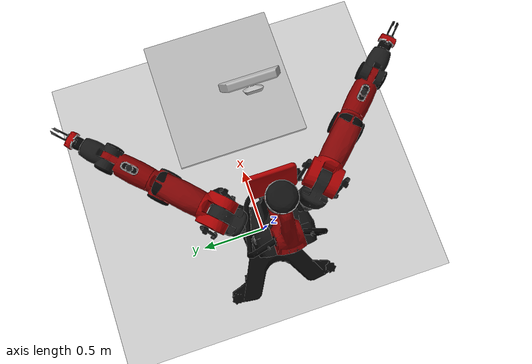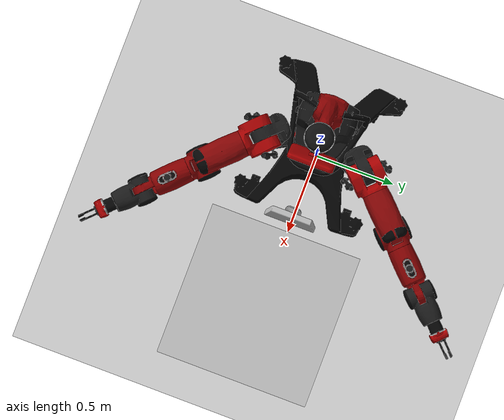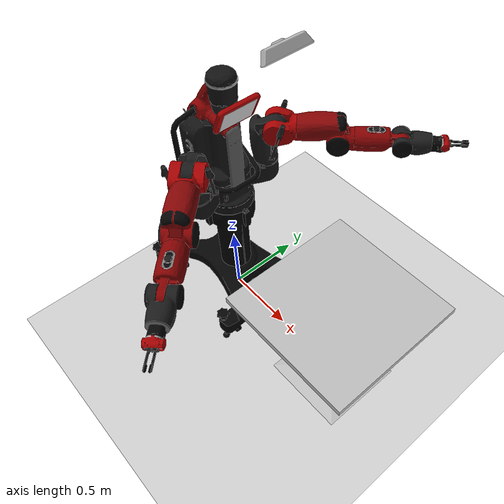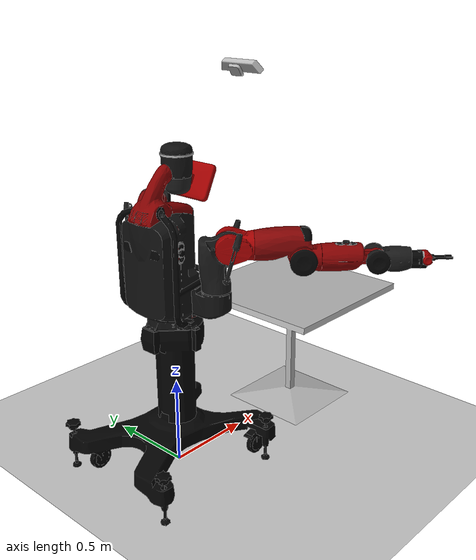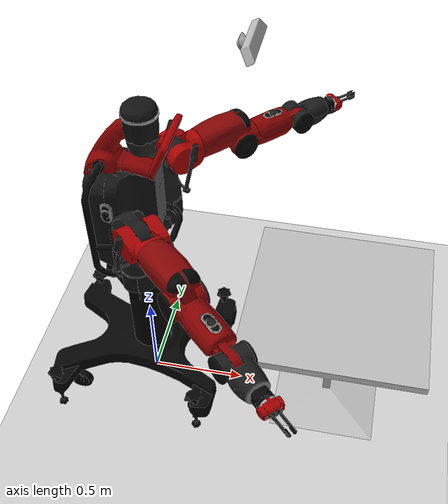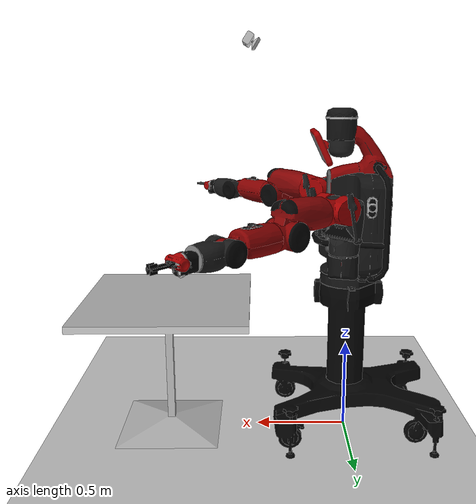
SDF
<sdf version="1.4">
 <world name="myworld">
  <light name="sun" type="directional">
   <pose>0 0 10 0 -0 0</pose>
   <diffuse>0.8 0.8 0.8 1</diffuse>
   <specular>0.2 0.2 0.2 1</specular>
   <attenuation>
    <range>1000</range>
    <constant>0.9</constant>
    <linear>0.01</linear>
    <quadratic>0.001</quadratic>
   </attenuation>
   <direction>-0.5 0.1 -0.9</direction>
  </light>
  <model name="ground_plane">
   <static>1</static>
   <link name="link">
    <collision name="collision">
     <geometry><plane><normal>0 0 1</normal><size>100 100</size></plane></geometry>
     <surface><friction><ode><mu>100</mu><mu2>50</mu2></ode></friction></surface>
    </collision>
    <visual name="visual">
     <cast_shadows>0</cast_shadows>
     <geometry><plane><normal>0 0 1</normal><size>100 100</size></plane></geometry>
     <material>
      <script><uri>file://media/materials/scripts/gazebo.material</uri><name>Gazebo/Grey</name></script>
     </material>
    </visual>
    <velocity_decay><linear>0</linear><angular>0</angular></velocity_decay>
   </link>
  </model>
  <physics type="ode">
   <max_step_size>0.001</max_step_size>
   <real_time_factor>1</real_time_factor>
   <real_time_update_rate>1000</real_time_update_rate>
   <gravity>0 0 -9.8</gravity>
  </physics>
  <scene><ambient>0.4 0.4 0.4 1</ambient><background>0.7 0.7 0.7 1</background><shadows>1</shadows></scene>
  <spherical_coordinates>
   <surface_model>EARTH_WGS84</surface_model>
   <latitude_deg>0</latitude_deg>
   <longitude_deg>0</longitude_deg>
   <elevation>0</elevation>
   <heading_deg>0</heading_deg>
  </spherical_coordinates>
  <model name="baxter">
   <link name="base">
    <inertial>
     <pose>1.93397e-07 -1.05658e-22 3.46402e-06 0 -0 0</pose>
     <mass>96.2011</mass>
     <inertia>
      <ixx>6.91297</ixx>
      <ixy>0.00068017</ixy>
      <ixz>0.64779</ixz>
      <iyy>7.74978</iyy>
      <iyz>0.00434511</iyz>
      <izz>5.76418</izz>
     </inertia>
    </inertial>
    <collision name="base_collision_collision_head_link_1">
     <pose>0.04 -0.04 0.75 0 -0 0</pose>
     <geometry><sphere><radius>0.22</radius></sphere></geometry>
    </collision>
    <collision name="base_collision_collision_head_link_2">
     <pose>0.04 0.04 0.75 0 -0 0</pose>
     <geometry><sphere><radius>0.22</radius></sphere></geometry>
    </collision>
    <collision name="base_collision_pedestal">
     <geometry>
      <mesh>
       <scale>1 1 1</scale>
       <uri>/home/kw2503/baxter-abcs/src/baxter_description/meshes/base/pedestal_link_collision.DAE</uri>
      </mesh>
     </geometry>
    </collision>
    <collision name="base_collision_sonar_ring">
     <pose>0.0947 0 0.817 0 -0 0</pose>
     <geometry><sphere><radius>0.001</radius></sphere></geometry>
    </collision>
    <collision name="base_collision_torso">
     <geometry>
      <mesh>
       <scale>1 1 1</scale>
       <uri>/home/kw2503/baxter-abcs/src/baxter_description/meshes/torso/base_link_collision.DAE</uri>
      </mesh>
     </geometry>
    </collision>
    <visual name="base_visual_collision_head_link_1">
     <pose>0.11 0 0.75 0 -0 0</pose>
     <geometry><sphere><radius>0.001</radius></sphere></geometry>
    </visual>
    <visual name="base_visual_collision_head_link_2">
     <pose>0.11 0 0.75 0 -0 0</pose>
     <geometry><sphere><radius>0.001</radius></sphere></geometry>
    </visual>
    <visual name="base_visual_pedestal">
     <geometry>
      <mesh>
       <scale>1 1 1</scale>
       <uri>/home/kw2503/baxter-abcs/src/baxter_description/meshes/base/PEDESTAL.DAE</uri>
      </mesh>
     </geometry>
    </visual>
    <visual name="base_visual_sonar_ring">
     <pose>0.06 0 0.82653 0 -0 0</pose>
     <geometry><cylinder><length>0.01</length><radius>0.085</radius></cylinder></geometry>
    </visual>
    <visual name="base_visual_torso">
     <geometry>
      <mesh>
       <scale>1 1 1</scale>
       <uri>/home/kw2503/baxter-abcs/src/baxter_description/meshes/torso/base_link.DAE</uri>
      </mesh>
     </geometry>
    </visual>
    <velocity_decay><linear>0</linear><angular>0</angular></velocity_decay>
    <velocity_decay><linear>0</linear><angular>0</angular></velocity_decay>
    <sensor name="sonar" type="ray">
     <ray>
      <scan>
       <horizontal>
        <samples>12</samples>
        <resolution>1</resolution>
        <min_angle>-3.14</min_angle>
        <max_angle>3.14</max_angle>
       </horizontal>
       <vertical>
        <samples>2</samples>
        <resolution>1</resolution>
        <min_angle>-0.001</min_angle>
        <max_angle>0</max_angle>
       </vertical>
      </scan>
      <range><min>0.05</min><max>50</max></range>
     </ray>
     <plugin name="sonar_plugin" filename="libgazebo_ros_block_laser.so">
      <gaussianNoise>0.00</gaussianNoise>
      <alwaysOn>true</alwaysOn>
      <updateRate>100.0</updateRate>
      <topicName>/robot/sonar/head_sonar/state</topicName>
      <frameName>sonar_ring</frameName>
      <robotNamespace>/</robotNamespace>
     </plugin>
     <always_on>1</always_on>
     <update_rate>100</update_rate>
     <pose>0.0947 0 0.817 0 -0 0</pose>
    </sensor>
   </link>
   <joint name="fixed" type="revolute">
    <child>base</child>
    <parent>world</parent>
    <axis>
     <limit><lower>0</lower><upper>0</upper></limit>
     <dynamics><damping>0</damping></dynamics>
     <xyz>0 0 1</xyz>
    </axis>
   </joint>
   <link name="head">
    <pose>0.06 0 0.686 0 -0 0</pose>
    <inertial>
     <pose>0.0955984 1.28734e-18 0.0459502 0 -0 0</pose>
     <mass>1.08824</mass>
     <inertia>
      <ixx>0.0389042</ixx>
      <ixy>0.000202093</ixy>
      <ixz>-0.019724</ixz>
      <iyy>0.0616883</iyy>
      <iyz>-0.00109806</iyz>
      <izz>0.0378481</izz>
     </inertia>
    </inertial>
    <collision name="head_collision"><geometry><sphere><radius>0.001</radius></sphere></geometry></collision>
    <collision name="head_collision_kinect_mount_frame">
     <pose>0.5 0.012 0.5 0 1.0177 0</pose>
     <geometry>
      <mesh>
       <scale>0.001 0.001 0.001</scale>
       <uri>/opt/ros/indigo/share/pr2_description/meshes/sensors/kinect_v0/kinect.dae</uri>
      </mesh>
     </geometry>
    </collision>
    <collision name="head_collision_screen">
     <pose>0.1227 0 0 1.75057 5.55112e-17 1.5708</pose>
     <geometry><sphere><radius>0.001</radius></sphere></geometry>
    </collision>
    <visual name="head_visual">
     <pose>0 0 0.00953 0 -0 0</pose>
     <geometry>
      <mesh><scale>1 1 1</scale><uri>/home/kw2503/baxter-abcs/src/baxter_description/meshes/head/H0.DAE</uri></mesh>
     </geometry>
    </visual>
    <visual name="head_visual_display">
     <pose>0.119839 1.40131e-14 -0.0157421 2.01237 5.55112e-17 1.5708</pose>
     <geometry><box><size>0.218 0.16 0.001</size></box></geometry>
     <plugin name="screen_video_controller" filename="libgazebo_ros_video.so">
      <height>600</height>
      <width>1024</width>
      <topicName>/robot/xdisplay</topicName>
      <robotNamespace>/</robotNamespace>
     </plugin>
    </visual>
    <visual name="head_visual_kinect_mount_frame">
     <pose>0.5 0.012 0.5 0 1.0177 0</pose>
     <geometry>
      <mesh>
       <scale>0.001 0.001 0.001</scale>
       <uri>/opt/ros/indigo/share/pr2_description/meshes/sensors/kinect_v0/kinect.dae</uri>
      </mesh>
     </geometry>
    </visual>
    <visual name="head_visual_screen">
     <pose>0.0868552 1.75522e-13 -0.00317182 1.5708 0.179774 8.02016e-14</pose>
     <geometry>
      <mesh><scale>1 1 1</scale><uri>/home/kw2503/baxter-abcs/src/baxter_description/meshes/head/H1.DAE</uri></mesh>
     </geometry>
    </visual>
    <velocity_decay><linear>0</linear><angular>0</angular></velocity_decay>
    <sensor name="head_camera" type="camera">
     <update_rate>30</update_rate>
     <camera name="head_camera">
      <pose>0 0.21 0 -7.96765e-17 -0.8 -1.5708</pose>
      <horizontal_fov>1.39626</horizontal_fov>
      <image><width>800</width><height>800</height><format>R8G8B8</format></image>
      <clip><near>0.02</near><far>300</far></clip>
      <noise><type>gaussian</type><mean>0</mean><stddev>0.007</stddev></noise>
     </camera>
     <plugin name="camera_controller" filename="libgazebo_ros_camera.so">
      <alwaysOn>true</alwaysOn>
      <updateRate>0.0</updateRate>
      <cameraName>head_camera</cameraName>
      <imageTopicName>image</imageTopicName>
      <cameraInfoTopicName>camera_info</cameraInfoTopicName>
      <frameName>head_camera</frameName>
      <hackBaseline>0.07</hackBaseline>
      <distortionK1>0.0</distortionK1>
      <distortionK2>0.0</distortionK2>
      <distortionK3>0.0</distortionK3>
      <distortionT1>0.0</distortionT1>
      <distortionT2>0.0</distortionT2>
      <robotNamespace>/cameras</robotNamespace>
     </plugin>
     <pose>0.12839 0 0.06368 1.75057 5.55112e-17 1.5708</pose>
    </sensor>
    <velocity_decay><linear>0</linear><angular>0</angular></velocity_decay>
    <velocity_decay><linear>0</linear><angular>0</angular></velocity_decay>
    <sensor name="kinect_mount_frame_sensor" type="depth">
     <always_on>1</always_on>
     <update_rate>20</update_rate>
     <camera name="__default__">
      <horizontal_fov>0.994838</horizontal_fov>
      <image><format>R8G8B8</format><width>640</width><height>480</height></image>
      <clip><near>0.01</near><far>5</far></clip>
     </camera>
     <plugin name="kinect_mount_frame_controller" filename="libgazebo_ros_openni_kinect.so">
      <alwaysOn>true</alwaysOn>
      <updateRate>20.0</updateRate>
      <cameraName>kinect_mount</cameraName>
      <imageTopicName>kinect_mount/ir/image_raw</imageTopicName>
      <cameraInfoTopicName>kinect_mount/ir/camera_info</cameraInfoTopicName>
      <depthImageTopicName>kinect_mount/depth/image_raw</depthImageTopicName>
      <depthImageCameraInfoTopicName>kinect_mount/depth/camera_info</depthImageCameraInfoTopicName>
      <pointCloudTopicName>kinect_mount/depth/points</pointCloudTopicName>
      <frameName>kinect_mount_optical_frame</frameName>
      <pointCloudCutoff>0.5</pointCloudCutoff>
      <distortionK1>0.00000001</distortionK1>
      <distortionK2>0.00000001</distortionK2>
      <distortionK3>0.00000001</distortionK3>
      <distortionT1>0.00000001</distortionT1>
      <distortionT2>0.00000001</distortionT2>
      <CxPrime>0</CxPrime>
      <Cx>0</Cx>
      <Cy>0</Cy>
      <focalLength>0</focalLength>
      <hackBaseline>0</hackBaseline>
      <robotNamespace>/</robotNamespace>
     </plugin>
     <pose>0.5 0 0.5 0 1.0177 0</pose>
    </sensor>
    <sensor name="kinect_mount_frame_sensor" type="depth">
     <always_on>1</always_on>
     <update_rate>20</update_rate>
     <camera name="__default__">
      <horizontal_fov>0.994838</horizontal_fov>
      <image><format>R8G8B8</format><width>640</width><height>480</height></image>
      <clip><near>0.01</near><far>5</far></clip>
     </camera>
     <plugin name="kinect_mount_frame_controller" filename="libgazebo_ros_openni_kinect.so">
      <alwaysOn>true</alwaysOn>
      <updateRate>20.0</updateRate>
      <cameraName>kinect_mount</cameraName>
      <imageTopicName>kinect_mount/rgb/image_raw</imageTopicName>
      <cameraInfoTopicName>kinect_mount/rgb/camera_info</cameraInfoTopicName>
      <depthImageTopicName>kinect_mount/depth/image_raw</depthImageTopicName>
      <depthImageCameraInfoTopicName>kinect_mount/depth/camera_info</depthImageCameraInfoTopicName>
      <pointCloudTopicName>kinect_mount/rgb/points</pointCloudTopicName>
      <frameName>kinect_mount_optical_frame</frameName>
      <pointCloudCutoff>0.5</pointCloudCutoff>
      <distortionK1>0.00000001</distortionK1>
      <distortionK2>0.00000001</distortionK2>
      <distortionK3>0.00000001</distortionK3>
      <distortionT1>0.00000001</distortionT1>
      <distortionT2>0.00000001</distortionT2>
      <CxPrime>0</CxPrime>
      <Cx>0</Cx>
      <Cy>0</Cy>
      <focalLength>0</focalLength>
      <hackBaseline>0</hackBaseline>
      <robotNamespace>/</robotNamespace>
     </plugin>
     <pose>0.5 0 0.5 0 1.0177 0</pose>
    </sensor>
   </link>
   <joint name="head_pan" type="revolute">
    <child>head</child>
    <parent>base</parent>
    <axis>
     <xyz>0 0 1</xyz>
     <limit><lower>-1.3963</lower><upper>1.3963</upper><effort>50000</effort><velocity>10000</velocity></limit>
     <dynamics><damping>0.7</damping></dynamics>
    </axis>
    <physics>
     <ode>
      <implicit_spring_damper>1</implicit_spring_damper>
      <cfm_damping>1</cfm_damping>
      <limit><cfm>0</cfm><erp>0.2</erp></limit>
     </ode>
    </physics>
   </joint>
   <link name="left_upper_shoulder">
    <pose>0.0640272 0.259027 0.129626 0 -0 0.7854</pose>
    <inertial>
     <pose>0.01783 0.00086 0.19127 0 -0 0</pose>
     <mass>5.70044</mass>
     <inertia>
      <ixx>0.047091</ixx>
      <ixy>0.000127876</ixy>
      <ixz>0.0061487</ixz>
      <iyy>0.0376698</iyy>
      <iyz>0.000780869</iyz>
      <izz>0.0359599</izz>
     </inertia>
    </inertial>
    <collision name="left_upper_shoulder_collision">
     <pose>0 0 0.1361 0 -0 0</pose>
     <geometry><cylinder><length>0.2722</length><radius>0.06</radius></cylinder></geometry>
    </collision>
    <visual name="left_upper_shoulder_visual">
     <geometry>
      <mesh>
       <scale>1 1 1</scale>
       <uri>/home/kw2503/baxter-abcs/src/baxter_description/meshes/upper_shoulder/S0.DAE</uri>
      </mesh>
     </geometry>
    </visual>
    <velocity_decay><linear>0</linear><angular>0</angular></velocity_decay>
    <gravity>0</gravity>
   </link>
   <joint name="left_s0" type="revolute">
    <child>left_upper_shoulder</child>
    <parent>base</parent>
    <axis>
     <xyz>0 0 1</xyz>
     <limit><lower>-1.70168</lower><upper>1.70168</upper><effort>50</effort><velocity>1.5</velocity></limit>
     <dynamics><damping>0.7</damping></dynamics>
    </axis>
    <physics>
     <ode>
      <implicit_spring_damper>1</implicit_spring_damper>
      <cfm_damping>1</cfm_damping>
      <limit><cfm>0</cfm><erp>0.2</erp></limit>
     </ode>
    </physics>
   </joint>
   <link name="left_lower_shoulder">
    <pose>0.112818 0.307818 0.399976 -1.5708 -0 0.7854</pose>
    <inertial>
     <pose>0.0684512 0.00268992 -0.00528984 0 -0 0</pose>
     <mass>3.22708</mass>
     <inertia>
      <ixx>0.0117521</ixx>
      <ixy>-0.000300954</ixy>
      <ixz>0.00207674</ixz>
      <iyy>0.0278861</iyy>
      <iyz>-0.000188219</iyz>
      <izz>0.0207877</izz>
     </inertia>
    </inertial>
    <collision name="left_lower_shoulder_collision">
     <geometry><cylinder><length>0.12</length><radius>0.06</radius></cylinder></geometry>
    </collision>
    <collision name="left_lower_shoulder_collision_left_upper_elbow_visual">
     <pose>0.2435 -6.68382e-13 6.68382e-13 1.5708 -5.55112e-17 1.5708</pose>
     <geometry><cylinder><length>0.273</length><radius>0.06</radius></cylinder></geometry>
    </collision>
    <visual name="left_lower_shoulder_visual">
     <geometry>
      <mesh>
       <scale>1 1 1</scale>
       <uri>/home/kw2503/baxter-abcs/src/baxter_description/meshes/lower_shoulder/S1.DAE</uri>
      </mesh>
     </geometry>
    </visual>
    <velocity_decay><linear>0</linear><angular>0</angular></velocity_decay>
    <gravity>0</gravity>
   </link>
   <joint name="left_s1" type="revolute">
    <child>left_lower_shoulder</child>
    <parent>left_upper_shoulder</parent>
    <axis>
     <xyz>-0.707108 0.707105 0</xyz>
     <limit><lower>-2.147</lower><upper>1.047</upper><effort>50</effort><velocity>1.5</velocity></limit>
     <dynamics><damping>0.7</damping></dynamics>
    </axis>
    <physics>
     <ode>
      <implicit_spring_damper>1</implicit_spring_damper>
      <cfm_damping>1</cfm_damping>
      <limit><cfm>0</cfm><erp>0.2</erp></limit>
     </ode>
    </physics>
   </joint>
   <link name="left_upper_elbow">
    <pose>0.184942 0.379943 0.399976 -2.35616 1.57079 -1.57076</pose>
    <inertial>
     <pose>-0.00276 0.00132 0.18086 0 -0 0</pose>
     <mass>4.31272</mass>
     <inertia>
      <ixx>0.0266173</ixx>
      <ixy>0.000292706</ixy>
      <ixz>0.0039219</ixz>
      <iyy>0.0284436</iyy>
      <iyz>0.00108389</iyz>
      <izz>0.0124801</izz>
     </inertia>
    </inertial>
    <collision name="left_upper_elbow_collision">
     <pose>0 0 -0.0535 0 -0 0</pose>
     <geometry><cylinder><length>0.107</length><radius>0.06</radius></cylinder></geometry>
    </collision>
    <visual name="left_upper_elbow_visual">
     <geometry>
      <mesh>
       <scale>1 1 1</scale>
       <uri>/home/kw2503/baxter-abcs/src/baxter_description/meshes/upper_elbow/E0.DAE</uri>
      </mesh>
     </geometry>
    </visual>
    <velocity_decay><linear>0</linear><angular>0</angular></velocity_decay>
    <gravity>0</gravity>
   </link>
   <joint name="left_e0" type="revolute">
    <child>left_upper_elbow</child>
    <parent>left_lower_shoulder</parent>
    <axis>
     <xyz>0.707105 0.707108 0</xyz>
     <limit><lower>-3.05418</lower><upper>3.05418</upper><effort>50</effort><velocity>1.5</velocity></limit>
     <dynamics><damping>0.7</damping></dynamics>
    </axis>
    <physics>
     <ode>
      <implicit_spring_damper>1</implicit_spring_damper>
      <cfm_damping>1</cfm_damping>
      <limit><cfm>0</cfm><erp>0.2</erp></limit>
     </ode>
    </physics>
   </joint>
   <link name="left_lower_elbow">
    <pose>0.370501 0.565502 0.330976 -1.5708 -0 0.7854</pose>
    <inertial>
     <pose>0.026113 0.00158992 -0.0111695 0 -0 0</pose>
     <mass>2.07216</mass>
     <inertia>
      <ixx>0.00711585</ixx>
      <ixy>0.000360372</ixy>
      <ixz>0.00074588</ixz>
      <iyy>0.0131827</iyy>
      <iyz>-0.000196632</iyz>
      <izz>0.00926891</izz>
     </inertia>
    </inertial>
    <collision name="left_lower_elbow_collision">
     <geometry><cylinder><length>0.1</length><radius>0.06</radius></cylinder></geometry>
    </collision>
    <collision name="left_lower_elbow_collision_left_upper_forearm_visual">
     <pose>0.224 -6.6594e-13 6.6594e-13 1.5708 -5.55112e-17 1.5708</pose>
     <geometry><cylinder><length>0.272</length><radius>0.06</radius></cylinder></geometry>
    </collision>
    <visual name="left_lower_elbow_visual">
     <geometry>
      <mesh>
       <scale>1 1 1</scale>
       <uri>/home/kw2503/baxter-abcs/src/baxter_description/meshes/lower_elbow/E1.DAE</uri>
      </mesh>
     </geometry>
    </visual>
    <velocity_decay><linear>0</linear><angular>0</angular></velocity_decay>
    <gravity>0</gravity>
   </link>
   <joint name="left_e1" type="revolute">
    <child>left_lower_elbow</child>
    <parent>left_upper_elbow</parent>
    <axis>
     <xyz>-0.707108 0.707105 0</xyz>
     <limit><lower>-0.05</lower><upper>2.618</upper><effort>50</effort><velocity>1.5</velocity></limit>
     <dynamics><damping>0.7</damping></dynamics>
    </axis>
    <physics>
     <ode>
      <implicit_spring_damper>1</implicit_spring_damper>
      <cfm_damping>1</cfm_damping>
      <limit><cfm>0</cfm><erp>0.2</erp></limit>
     </ode>
    </physics>
   </joint>
   <link name="left_upper_forearm">
    <pose>0.44375 0.638751 0.330976 -2.03443 1.57079 -1.24903</pose>
    <inertial>
     <pose>-0.00168244 0.0045998 0.139519 0 -0 0</pose>
     <mass>2.24675</mass>
     <inertia>
      <ixx>0.0166775</ixx>
      <ixy>0.000184012</ixy>
      <ixz>0.000186469</ixz>
      <iyy>0.0167549</iyy>
      <iyz>-0.000647332</iyz>
      <izz>0.00374662</izz>
     </inertia>
    </inertial>
    <collision name="left_upper_forearm_collision">
     <pose>0 0 -0.044 0 -0 0</pose>
     <geometry><cylinder><length>0.088</length><radius>0.06</radius></cylinder></geometry>
    </collision>
    <visual name="left_upper_forearm_visual">
     <geometry>
      <mesh>
       <scale>1 1 1</scale>
       <uri>/home/kw2503/baxter-abcs/src/baxter_description/meshes/upper_forearm/W0.DAE</uri>
      </mesh>
     </geometry>
    </visual>
    <velocity_decay><linear>0</linear><angular>0</angular></velocity_decay>
    <gravity>0</gravity>
   </link>
   <joint name="left_w0" type="revolute">
    <child>left_upper_forearm</child>
    <parent>left_lower_elbow</parent>
    <axis>
     <xyz>0.707105 0.707108 0</xyz>
     <limit><lower>-3.059</lower><upper>3.059</upper><effort>15</effort><velocity>4</velocity></limit>
     <dynamics><damping>0.7</damping></dynamics>
    </axis>
    <physics>
     <ode>
      <implicit_spring_damper>1</implicit_spring_damper>
      <cfm_damping>1</cfm_damping>
      <limit><cfm>0</cfm><erp>0.2</erp></limit>
     </ode>
    </physics>
   </joint>
   <link name="left_lower_forearm">
    <pose>0.635163 0.830166 0.320976 -1.5708 -1.66533e-16 0.7854</pose>
    <inertial>
     <pose>0.06041 0.00697 0.006 0 -0 0</pose>
     <mass>1.60979</mass>
     <inertia>
      <ixx>0.00387607</ixx>
      <ixy>-0.000443848</ixy>
      <ixz>-0.00021115</ixz>
      <iyy>0.00700538</iyy>
      <iyz>0.000153481</iyz>
      <izz>0.00552755</izz>
     </inertia>
    </inertial>
    <collision name="left_lower_forearm_collision">
     <geometry><cylinder><length>0.1</length><radius>0.06</radius></cylinder></geometry>
    </collision>
    <visual name="left_lower_forearm_visual">
     <geometry>
      <mesh>
       <scale>1 1 1</scale>
       <uri>/home/kw2503/baxter-abcs/src/baxter_description/meshes/lower_forearm/W1.DAE</uri>
      </mesh>
     </geometry>
    </visual>
    <velocity_decay><linear>0</linear><angular>0</angular></velocity_decay>
    <gravity>0</gravity>
   </link>
   <joint name="left_w1" type="revolute">
    <child>left_lower_forearm</child>
    <parent>left_upper_forearm</parent>
    <axis>
     <xyz>-0.707108 0.707105 0</xyz>
     <limit><lower>-1.5708</lower><upper>2.094</upper><effort>15</effort><velocity>4</velocity></limit>
     <dynamics><damping>0.7</damping></dynamics>
    </axis>
    <physics>
     <ode>
      <implicit_spring_damper>1</implicit_spring_damper>
      <cfm_damping>1</cfm_damping>
      <limit><cfm>0</cfm><erp>0.2</erp></limit>
     </ode>
    </physics>
   </joint>
   <link name="left_wrist">
    <pose>0.71717 0.912173 0.320976 -1.89253 1.57079 -1.10713</pose>
    <inertial>
     <pose>0.00331828 0.000616339 0.079435 0 -0 0</pose>
     <mass>0.84268</mass>
     <inertia>
      <ixx>0.00285059</ixx>
      <ixy>7.17373e-06</ixy>
      <ixz>2.52032e-05</ixz>
      <iyy>0.00291735</iyy>
      <iyz>2.17353e-05</iyz>
      <izz>0.000560608</izz>
     </inertia>
    </inertial>
    <collision name="left_wrist_collision">
     <geometry><cylinder><length>0.165</length><radius>0.06</radius></cylinder></geometry>
    </collision>
    <collision name="left_wrist_collision_left_gripper_base">
     <pose>0 0 0.13855 1.5708 -2.06823e-13 3.14159</pose>
     <geometry><cylinder><length>0.1</length><radius>0.029</radius></cylinder></geometry>
    </collision>
    <collision name="left_wrist_collision_left_hand">
     <pose>0 0 0.09035 0 -0 0</pose>
     <geometry><cylinder><length>0.0464</length><radius>0.04</radius></cylinder></geometry>
    </collision>
    <visual name="left_wrist_visual">
     <geometry>
      <mesh>
       <scale>1 1 1</scale>
       <uri>/home/kw2503/baxter-abcs/src/baxter_description/meshes/wrist/W2.DAE</uri>
      </mesh>
     </geometry>
    </visual>
    <visual name="left_wrist_visual_left_gripper_base">
     <pose>0 0 0.13855 1.5708 -2.06823e-13 3.14159</pose>
     <geometry>
      <mesh>
       <scale>1 1 1</scale>
       <uri>/opt/ros/indigo/share/rethink_ee_description/meshes/electric_gripper/electric_gripper_base.DAE</uri>
      </mesh>
     </geometry>
    </visual>
    <visual name="left_wrist_visual_left_hand_accelerometer">
     <pose>0.00198 0.000133 0.09895 0 -0 0</pose>
     <geometry><box><size>0.01 0.01 0.01</size></box></geometry>
    </visual>
    <visual name="left_wrist_visual_left_hand_camera">
     <pose>0.03825 0.012 0.128905 0 0 -1.5708</pose>
     <geometry><cylinder><length>0.01</length><radius>0.02</radius></cylinder></geometry>
    </visual>
    <visual name="left_wrist_visual_left_hand_range">
     <pose>0.032 -0.020245 0.14235 -3.14158 -1.57079 1.57078</pose>
     <geometry><box><size>0.005 0.02 0.005</size></box></geometry>
    </visual>
    <velocity_decay><linear>0</linear><angular>0</angular></velocity_decay>
    <sensor name="left_hand_camera" type="camera">
     <update_rate>30</update_rate>
     <camera name="left_hand_camera">
      <pose>0 0 0 2.65356e-06 -1.57079 1.57079</pose>
      <horizontal_fov>1.39626</horizontal_fov>
      <image><width>800</width><height>800</height><format>R8G8B8</format></image>
      <clip><near>0.02</near><far>300</far></clip>
      <noise><type>gaussian</type><mean>0</mean><stddev>0.007</stddev></noise>
     </camera>
     <plugin name="camera_controller" filename="libgazebo_ros_camera.so">
      <alwaysOn>true</alwaysOn>
      <updateRate>0.0</updateRate>
      <cameraName>left_hand_camera</cameraName>
      <imageTopicName>image</imageTopicName>
      <cameraInfoTopicName>camera_info</cameraInfoTopicName>
      <frameName>left_hand_camera</frameName>
      <hackBaseline>0.07</hackBaseline>
      <distortionK1>0.0</distortionK1>
      <distortionK2>0.0</distortionK2>
      <distortionK3>0.0</distortionK3>
      <distortionT1>0.0</distortionT1>
      <distortionT2>0.0</distortionT2>
      <robotNamespace>/cameras</robotNamespace>
     </plugin>
     <pose>0.03825 0.012 0.128905 0 0 -1.5708</pose>
    </sensor>
    <gravity>0</gravity>
    <velocity_decay><linear>0</linear><angular>0</angular></velocity_decay>
    <sensor name="ir_left" type="ray">
     <ray>
      <scan>
       <horizontal>
        <samples>1</samples>
        <resolution>1</resolution>
        <min_angle>-0.5</min_angle>
        <max_angle>0.5</max_angle>
       </horizontal>
      </scan>
      <range><min>0.004</min><max>0.4</max></range>
     </ray>
     <plugin name="plugin_4" filename="libgazebo_ros_laser.so">
      <gaussianNoise>0.005</gaussianNoise>
      <alwaysOn>true</alwaysOn>
      <updateRate>100</updateRate>
      <topicName>/sim/laserscan/left_hand_range/state</topicName>
      <frameName>left_hand_range</frameName>
      <robotNamespace>/</robotNamespace>
     </plugin>
     <always_on>1</always_on>
     <update_rate>100</update_rate>
     <pose>0.032 -0.020245 0.14235 -3.14158 -1.57079 1.57078</pose>
    </sensor>
   </link>
   <joint name="left_w2" type="revolute">
    <child>left_wrist</child>
    <parent>left_lower_forearm</parent>
    <axis>
     <xyz>0.707105 0.707108 0</xyz>
     <limit><lower>-3.059</lower><upper>3.059</upper><effort>15</effort><velocity>4</velocity></limit>
     <dynamics><damping>0.7</damping></dynamics>
    </axis>
    <physics>
     <ode>
      <implicit_spring_damper>1</implicit_spring_damper>
      <cfm_damping>1</cfm_damping>
      <limit><cfm>0</cfm><erp>0.2</erp></limit>
     </ode>
    </physics>
   </joint>
   <link name="l_gripper_l_finger">
    <pose>0.830342 1.02322 0.320976 -1.89253 1.57079 -1.10713</pose>
    <inertial>
     <pose>0 0.00575 0.0375667 0 -0 3.14159</pose>
     <mass>0.03</mass>
     <inertia>
      <ixx>0.0200867</ixx>
      <ixy>4.0989e-19</ixy>
      <ixz>-2.67795e-18</ixz>
      <iyy>0.0200847</iyy>
      <iyz>1.29605e-05</iyz>
      <izz>0.020002</izz>
     </inertia>
    </inertial>
    <collision name="l_gripper_l_finger_collision">
     <pose>0 0.01725 0.0615 0 -0 3.14159</pose>
     <geometry><box><size>0.01 0.0135 0.1127</size></box></geometry>
     <surface>
      <contact><ode><kp>100000</kp><kd>1</kd></ode></contact>
      <friction><ode><mu>1000</mu><mu2>1000</mu2><fdir1>0 0 1</fdir1></ode></friction>
     </surface>
    </collision>
    <collision name="l_gripper_l_finger_collision_l_gripper_l_finger_1">
     <pose>-0.005 -0.003 0.0083 0 -0 3.14159</pose>
     <geometry><box><size>0.01 0.05 0.017</size></box></geometry>
     <surface>
      <contact><ode><kp>100000</kp><kd>1</kd></ode></contact>
      <friction><ode><mu>1000</mu><mu2>1000</mu2><fdir1>0 0 1</fdir1></ode></friction>
     </surface>
    </collision>
    <collision name="l_gripper_l_finger_collision_l_gripper_l_finger_tip">
     <pose>0 0.01275 0.0977 0 -0 -3.14159</pose>
     <geometry><box><size>0.042 0.0065 0.037</size></box></geometry>
     <surface>
      <contact><ode><kp>100000</kp><kd>1</kd></ode></contact>
      <friction><ode><mu>1000</mu><mu2>1000</mu2><fdir1>0 0 1</fdir1></ode></friction>
     </surface>
    </collision>
    <visual name="l_gripper_l_finger_visual">
     <pose>0 0 0 0 -0 3.14159</pose>
     <geometry>
      <mesh>
       <scale>1 1 1</scale>
       <uri>/opt/ros/indigo/share/rethink_ee_description/meshes/electric_gripper/fingers/extended_narrow.DAE</uri>
      </mesh>
     </geometry>
    </visual>
    <visual name="l_gripper_l_finger_visual_l_gripper_l_finger_tip">
     <pose>0 0.01725 0.1127 0 -0 -3.14159</pose>
     <geometry>
      <mesh>
       <scale>1 1 1</scale>
       <uri>/opt/ros/indigo/share/rethink_ee_description/meshes/electric_gripper/fingers/paddle_tip.DAE</uri>
      </mesh>
     </geometry>
    </visual>
    <velocity_decay><linear>0</linear><angular>0</angular></velocity_decay>
   </link>
   <joint name="l_gripper_l_finger_joint" type="prismatic">
    <child>l_gripper_l_finger</child>
    <parent>left_wrist</parent>
    <axis>
     <xyz>-0.707108 0.707105 1.46904e-11</xyz>
     <limit><lower>0</lower><upper>0.020833</upper><effort>20</effort><velocity>5</velocity></limit>
     <dynamics><damping>0.7</damping></dynamics>
    </axis>
    <physics>
     <ode>
      <implicit_spring_damper>1</implicit_spring_damper>
      <cfm_damping>1</cfm_damping>
      <limit><cfm>0</cfm><erp>0.2</erp></limit>
     </ode>
    </physics>
   </joint>
   <link name="l_gripper_r_finger">
    <pose>0.828221 1.02535 0.320976 -1.89253 1.57079 -1.10713</pose>
    <inertial>
     <pose>0 -0.00575 0.0375667 0 -0 0</pose>
     <mass>0.03</mass>
     <inertia>
      <ixx>0.0200867</ixx>
      <ixy>0</ixy>
      <ixz>0</ixz>
      <iyy>0.0200847</iyy>
      <iyz>1.29605e-05</iyz>
      <izz>0.020002</izz>
     </inertia>
    </inertial>
    <collision name="l_gripper_r_finger_collision">
     <pose>0 -0.01725 0.0615 0 -0 0</pose>
     <geometry><box><size>0.01 0.0135 0.1127</size></box></geometry>
     <surface>
      <contact><ode><kp>100000</kp><kd>1</kd></ode></contact>
      <friction><ode><mu>1000</mu><mu2>1000</mu2><fdir1>0 0 1</fdir1></ode></friction>
     </surface>
    </collision>
    <collision name="l_gripper_r_finger_collision_l_gripper_r_finger_1">
     <pose>0.005 0.003 0.0083 0 -0 0</pose>
     <geometry><box><size>0.01 0.05 0.017</size></box></geometry>
     <surface>
      <contact><ode><kp>100000</kp><kd>1</kd></ode></contact>
      <friction><ode><mu>1000</mu><mu2>1000</mu2><fdir1>0 0 1</fdir1></ode></friction>
     </surface>
    </collision>
    <collision name="l_gripper_r_finger_collision_l_gripper_r_finger_tip">
     <pose>0 -0.01275 0.0977 0 -0 0</pose>
     <geometry><box><size>0.042 0.0065 0.037</size></box></geometry>
     <surface>
      <contact><ode><kp>100000</kp><kd>1</kd></ode></contact>
      <friction><ode><mu>1000</mu><mu2>1000</mu2><fdir1>0 0 1</fdir1></ode></friction>
     </surface>
    </collision>
    <visual name="l_gripper_r_finger_visual">
     <geometry>
      <mesh>
       <scale>1 1 1</scale>
       <uri>/opt/ros/indigo/share/rethink_ee_description/meshes/electric_gripper/fingers/extended_narrow.DAE</uri>
      </mesh>
     </geometry>
    </visual>
    <visual name="l_gripper_r_finger_visual_l_gripper_r_finger_tip">
     <pose>0 -0.01725 0.1127 0 -0 0</pose>
     <geometry>
      <mesh>
       <scale>1 1 1</scale>
       <uri>/opt/ros/indigo/share/rethink_ee_description/meshes/electric_gripper/fingers/paddle_tip.DAE</uri>
      </mesh>
     </geometry>
    </visual>
    <velocity_decay><linear>0</linear><angular>0</angular></velocity_decay>
   </link>
   <joint name="l_gripper_r_finger_joint" type="prismatic">
    <child>l_gripper_r_finger</child>
    <parent>left_wrist</parent>
    <axis>
     <xyz>-0.707108 0.707105 1.46904e-11</xyz>
     <limit><lower>-0.020833</lower><upper>0</upper><effort>20</effort><velocity>5</velocity></limit>
     <dynamics><damping>0.7</damping></dynamics>
    </axis>
    <physics>
     <ode>
      <implicit_spring_damper>1</implicit_spring_damper>
      <cfm_damping>1</cfm_damping>
      <limit><cfm>0</cfm><erp>0.2</erp></limit>
     </ode>
    </physics>
   </joint>
   <link name="right_upper_shoulder">
    <pose>0.0640272 -0.259027 0.129626 0 0 -0.7854</pose>
    <inertial>
     <pose>0.01783 0.00086 0.19127 0 -0 0</pose>
     <mass>5.70044</mass>
     <inertia>
      <ixx>0.047091</ixx>
      <ixy>0.000127876</ixy>
      <ixz>0.0061487</ixz>
      <iyy>0.0376698</iyy>
      <iyz>0.000780869</iyz>
      <izz>0.0359599</izz>
     </inertia>
    </inertial>
    <collision name="right_upper_shoulder_collision">
     <pose>0 0 0.1361 0 -0 0</pose>
     <geometry><cylinder><length>0.2722</length><radius>0.06</radius></cylinder></geometry>
    </collision>
    <visual name="right_upper_shoulder_visual">
     <geometry>
      <mesh>
       <scale>1 1 1</scale>
       <uri>/home/kw2503/baxter-abcs/src/baxter_description/meshes/upper_shoulder/S0.DAE</uri>
      </mesh>
     </geometry>
    </visual>
    <velocity_decay><linear>0</linear><angular>0</angular></velocity_decay>
    <gravity>0</gravity>
   </link>
   <joint name="right_s0" type="revolute">
    <child>right_upper_shoulder</child>
    <parent>base</parent>
    <axis>
     <xyz>0 0 1</xyz>
     <limit><lower>-1.70168</lower><upper>1.70168</upper><effort>50</effort><velocity>1.5</velocity></limit>
     <dynamics><damping>0.7</damping></dynamics>
    </axis>
    <physics>
     <ode>
      <implicit_spring_damper>1</implicit_spring_damper>
      <cfm_damping>1</cfm_damping>
      <limit><cfm>0</cfm><erp>0.2</erp></limit>
     </ode>
    </physics>
   </joint>
   <link name="right_lower_shoulder">
    <pose>0.112818 -0.307818 0.399976 -1.5708 -0 -0.7854</pose>
    <inertial>
     <pose>0.0684512 0.00268992 -0.00528984 0 -0 0</pose>
     <mass>3.22708</mass>
     <inertia>
      <ixx>0.0117521</ixx>
      <ixy>-0.000300954</ixy>
      <ixz>0.00207674</ixz>
      <iyy>0.0278861</iyy>
      <iyz>-0.000188219</iyz>
      <izz>0.0207877</izz>
     </inertia>
    </inertial>
    <collision name="right_lower_shoulder_collision">
     <geometry><cylinder><length>0.12</length><radius>0.06</radius></cylinder></geometry>
    </collision>
    <collision name="right_lower_shoulder_collision_right_upper_elbow_visual">
     <pose>0.2435 -6.68382e-13 6.68382e-13 1.5708 -5.55112e-17 1.5708</pose>
     <geometry><cylinder><length>0.273</length><radius>0.06</radius></cylinder></geometry>
    </collision>
    <visual name="right_lower_shoulder_visual">
     <geometry>
      <mesh>
       <scale>1 1 1</scale>
       <uri>/home/kw2503/baxter-abcs/src/baxter_description/meshes/lower_shoulder/S1.DAE</uri>
      </mesh>
     </geometry>
    </visual>
    <velocity_decay><linear>0</linear><angular>0</angular></velocity_decay>
    <gravity>0</gravity>
   </link>
   <joint name="right_s1" type="revolute">
    <child>right_lower_shoulder</child>
    <parent>right_upper_shoulder</parent>
    <axis>
     <xyz>0.707108 0.707105 0</xyz>
     <limit><lower>-2.147</lower><upper>1.047</upper><effort>50</effort><velocity>1.5</velocity></limit>
     <dynamics><damping>0.7</damping></dynamics>
    </axis>
    <physics>
     <ode>
      <implicit_spring_damper>1</implicit_spring_damper>
      <cfm_damping>1</cfm_damping>
      <limit><cfm>0</cfm><erp>0.2</erp></limit>
     </ode>
    </physics>
   </joint>
   <link name="right_upper_elbow">
    <pose>0.184942 -0.379943 0.399976 -2.35618 1.57079 -3.14158</pose>
    <inertial>
     <pose>-0.00276 0.00132 0.18086 0 -0 0</pose>
     <mass>4.31272</mass>
     <inertia>
      <ixx>0.0266173</ixx>
      <ixy>0.000292706</ixy>
      <ixz>0.0039219</ixz>
      <iyy>0.0284436</iyy>
      <iyz>0.00108389</iyz>
      <izz>0.0124801</izz>
     </inertia>
    </inertial>
    <collision name="right_upper_elbow_collision">
     <pose>0 0 -0.0535 0 -0 0</pose>
     <geometry><cylinder><length>0.107</length><radius>0.06</radius></cylinder></geometry>
    </collision>
    <visual name="right_upper_elbow_visual">
     <geometry>
      <mesh>
       <scale>1 1 1</scale>
       <uri>/home/kw2503/baxter-abcs/src/baxter_description/meshes/upper_elbow/E0.DAE</uri>
      </mesh>
     </geometry>
    </visual>
    <velocity_decay><linear>0</linear><angular>0</angular></velocity_decay>
    <gravity>0</gravity>
   </link>
   <joint name="right_e0" type="revolute">
    <child>right_upper_elbow</child>
    <parent>right_lower_shoulder</parent>
    <axis>
     <xyz>0.707105 -0.707108 0</xyz>
     <limit><lower>-3.05418</lower><upper>3.05418</upper><effort>50</effort><velocity>1.5</velocity></limit>
     <dynamics><damping>0.7</damping></dynamics>
    </axis>
    <physics>
     <ode>
      <implicit_spring_damper>1</implicit_spring_damper>
      <cfm_damping>1</cfm_damping>
      <limit><cfm>0</cfm><erp>0.2</erp></limit>
     </ode>
    </physics>
   </joint>
   <link name="right_lower_elbow">
    <pose>0.370501 -0.565502 0.330976 -1.5708 1.66533e-16 -0.7854</pose>
    <inertial>
     <pose>0.026113 0.00158992 -0.0111695 0 -0 0</pose>
     <mass>2.07216</mass>
     <inertia>
      <ixx>0.00711585</ixx>
      <ixy>0.000360372</ixy>
      <ixz>0.00074588</ixz>
      <iyy>0.0131827</iyy>
      <iyz>-0.000196632</iyz>
      <izz>0.00926891</izz>
     </inertia>
    </inertial>
    <collision name="right_lower_elbow_collision">
     <geometry><cylinder><length>0.1</length><radius>0.06</radius></cylinder></geometry>
    </collision>
    <collision name="right_lower_elbow_collision_right_upper_forearm_visual">
     <pose>0.224 -6.6594e-13 6.6594e-13 1.5708 -5.55112e-17 1.5708</pose>
     <geometry><cylinder><length>0.272</length><radius>0.06</radius></cylinder></geometry>
    </collision>
    <visual name="right_lower_elbow_visual">
     <geometry>
      <mesh>
       <scale>1 1 1</scale>
       <uri>/home/kw2503/baxter-abcs/src/baxter_description/meshes/lower_elbow/E1.DAE</uri>
      </mesh>
     </geometry>
    </visual>
    <velocity_decay><linear>0</linear><angular>0</angular></velocity_decay>
    <gravity>0</gravity>
   </link>
   <joint name="right_e1" type="revolute">
    <child>right_lower_elbow</child>
    <parent>right_upper_elbow</parent>
    <axis>
     <xyz>0.707108 0.707105 0</xyz>
     <limit><lower>-0.05</lower><upper>2.618</upper><effort>50</effort><velocity>1.5</velocity></limit>
     <dynamics><damping>0.7</damping></dynamics>
    </axis>
    <physics>
     <ode>
      <implicit_spring_damper>1</implicit_spring_damper>
      <cfm_damping>1</cfm_damping>
      <limit><cfm>0</cfm><erp>0.2</erp></limit>
     </ode>
    </physics>
   </joint>
   <link name="right_upper_forearm">
    <pose>0.44375 -0.638751 0.330976 -2.03443 1.57079 -2.81983</pose>
    <inertial>
     <pose>-0.00168244 0.0045998 0.139519 0 -0 0</pose>
     <mass>2.24675</mass>
     <inertia>
      <ixx>0.0166775</ixx>
      <ixy>0.000184012</ixy>
      <ixz>0.000186469</ixz>
      <iyy>0.0167549</iyy>
      <iyz>-0.000647332</iyz>
      <izz>0.00374662</izz>
     </inertia>
    </inertial>
    <collision name="right_upper_forearm_collision">
     <pose>0 0 -0.044 0 -0 0</pose>
     <geometry><cylinder><length>0.088</length><radius>0.06</radius></cylinder></geometry>
    </collision>
    <visual name="right_upper_forearm_visual">
     <geometry>
      <mesh>
       <scale>1 1 1</scale>
       <uri>/home/kw2503/baxter-abcs/src/baxter_description/meshes/upper_forearm/W0.DAE</uri>
      </mesh>
     </geometry>
    </visual>
    <velocity_decay><linear>0</linear><angular>0</angular></velocity_decay>
    <gravity>0</gravity>
   </link>
   <joint name="right_w0" type="revolute">
    <child>right_upper_forearm</child>
    <parent>right_lower_elbow</parent>
    <axis>
     <xyz>0.707105 -0.707108 0</xyz>
     <limit><lower>-3.059</lower><upper>3.059</upper><effort>15</effort><velocity>4</velocity></limit>
     <dynamics><damping>0.7</damping></dynamics>
    </axis>
    <physics>
     <ode>
      <implicit_spring_damper>1</implicit_spring_damper>
      <cfm_damping>1</cfm_damping>
      <limit><cfm>0</cfm><erp>0.2</erp></limit>
     </ode>
    </physics>
   </joint>
   <link name="right_lower_forearm">
    <pose>0.635163 -0.830166 0.320976 -1.5708 -0 -0.7854</pose>
    <inertial>
     <pose>0.06041 0.00697 0.006 0 -0 0</pose>
     <mass>1.60979</mass>
     <inertia>
      <ixx>0.00387607</ixx>
      <ixy>-0.000443848</ixy>
      <ixz>-0.00021115</ixz>
      <iyy>0.00700538</iyy>
      <iyz>0.000153481</iyz>
      <izz>0.00552755</izz>
     </inertia>
    </inertial>
    <collision name="right_lower_forearm_collision">
     <geometry><cylinder><length>0.1</length><radius>0.06</radius></cylinder></geometry>
    </collision>
    <visual name="right_lower_forearm_visual">
     <geometry>
      <mesh>
       <scale>1 1 1</scale>
       <uri>/home/kw2503/baxter-abcs/src/baxter_description/meshes/lower_forearm/W1.DAE</uri>
      </mesh>
     </geometry>
    </visual>
    <velocity_decay><linear>0</linear><angular>0</angular></velocity_decay>
    <gravity>0</gravity>
   </link>
   <joint name="right_w1" type="revolute">
    <child>right_lower_forearm</child>
    <parent>right_upper_forearm</parent>
    <axis>
     <xyz>0.707108 0.707105 0</xyz>
     <limit><lower>-1.5708</lower><upper>2.094</upper><effort>15</effort><velocity>4</velocity></limit>
     <dynamics><damping>0.7</damping></dynamics>
    </axis>
    <physics>
     <ode>
      <implicit_spring_damper>1</implicit_spring_damper>
      <cfm_damping>1</cfm_damping>
      <limit><cfm>0</cfm><erp>0.2</erp></limit>
     </ode>
    </physics>
   </joint>
   <link name="right_wrist">
    <pose>0.71717 -0.912173 0.320976 -1.89254 1.57079 -2.67794</pose>
    <inertial>
     <pose>0.00331828 0.000616339 0.079435 0 -0 0</pose>
     <mass>0.84268</mass>
     <inertia>
      <ixx>0.00285059</ixx>
      <ixy>7.17373e-06</ixy>
      <ixz>2.52032e-05</ixz>
      <iyy>0.00291735</iyy>
      <iyz>2.17353e-05</iyz>
      <izz>0.000560608</izz>
     </inertia>
    </inertial>
    <collision name="right_wrist_collision">
     <geometry><cylinder><length>0.165</length><radius>0.06</radius></cylinder></geometry>
    </collision>
    <collision name="right_wrist_collision_right_gripper_base">
     <pose>0 0 0.13855 1.5708 -2.06823e-13 3.14159</pose>
     <geometry><cylinder><length>0.1</length><radius>0.029</radius></cylinder></geometry>
    </collision>
    <collision name="right_wrist_collision_right_hand">
     <pose>0 0 0.09035 0 -0 0</pose>
     <geometry><cylinder><length>0.0464</length><radius>0.04</radius></cylinder></geometry>
    </collision>
    <visual name="right_wrist_visual">
     <geometry>
      <mesh>
       <scale>1 1 1</scale>
       <uri>/home/kw2503/baxter-abcs/src/baxter_description/meshes/wrist/W2.DAE</uri>
      </mesh>
     </geometry>
    </visual>
    <visual name="right_wrist_visual_right_gripper_base">
     <pose>0 0 0.13855 1.5708 -2.06823e-13 3.14159</pose>
     <geometry>
      <mesh>
       <scale>1 1 1</scale>
       <uri>/opt/ros/indigo/share/rethink_ee_description/meshes/electric_gripper/electric_gripper_base.DAE</uri>
      </mesh>
     </geometry>
    </visual>
    <visual name="right_wrist_visual_right_hand_accelerometer">
     <pose>0.00198 0.000133 0.09895 0 -0 0</pose>
     <geometry><box><size>0.01 0.01 0.01</size></box></geometry>
    </visual>
    <visual name="right_wrist_visual_right_hand_camera">
     <pose>0.03825 0.012 0.128905 0 0 -1.5708</pose>
     <geometry><cylinder><length>0.01</length><radius>0.02</radius></cylinder></geometry>
    </visual>
    <visual name="right_wrist_visual_right_hand_range">
     <pose>0.032 -0.020245 0.14235 -3.14158 -1.57079 1.57078</pose>
     <geometry><box><size>0.005 0.02 0.005</size></box></geometry>
    </visual>
    <velocity_decay><linear>0</linear><angular>0</angular></velocity_decay>
    <sensor name="right_hand_camera" type="camera">
     <update_rate>30</update_rate>
     <camera name="right_hand_camera">
      <pose>0 0 0 2.65356e-06 -1.57079 1.57079</pose>
      <horizontal_fov>1.39626</horizontal_fov>
      <image><width>800</width><height>800</height><format>R8G8B8</format></image>
      <clip><near>0.02</near><far>300</far></clip>
      <noise><type>gaussian</type><mean>0</mean><stddev>0.007</stddev></noise>
     </camera>
     <plugin name="camera_controller" filename="libgazebo_ros_camera.so">
      <alwaysOn>true</alwaysOn>
      <updateRate>0.0</updateRate>
      <cameraName>right_hand_camera</cameraName>
      <imageTopicName>image</imageTopicName>
      <cameraInfoTopicName>camera_info</cameraInfoTopicName>
      <frameName>right_hand_camera</frameName>
      <hackBaseline>0.07</hackBaseline>
      <distortionK1>0.0</distortionK1>
      <distortionK2>0.0</distortionK2>
      <distortionK3>0.0</distortionK3>
      <distortionT1>0.0</distortionT1>
      <distortionT2>0.0</distortionT2>
      <robotNamespace>/cameras</robotNamespace>
     </plugin>
     <pose>0.03825 0.012 0.128905 0 0 -1.5708</pose>
    </sensor>
    <gravity>0</gravity>
    <velocity_decay><linear>0</linear><angular>0</angular></velocity_decay>
    <sensor name="ir_right" type="ray">
     <ray>
      <scan>
       <horizontal>
        <samples>1</samples>
        <resolution>1</resolution>
        <min_angle>-0.5</min_angle>
        <max_angle>0.5</max_angle>
       </horizontal>
      </scan>
      <range><min>0.004</min><max>0.4</max></range>
     </ray>
     <plugin name="plugin_3" filename="libgazebo_ros_laser.so">
      <gaussianNoise>0.005</gaussianNoise>
      <alwaysOn>true</alwaysOn>
      <updateRate>100</updateRate>
      <topicName>/sim/laserscan/right_hand_range/state</topicName>
      <frameName>right_hand_range</frameName>
      <robotNamespace>/</robotNamespace>
     </plugin>
     <always_on>1</always_on>
     <update_rate>100</update_rate>
     <pose>0.032 -0.020245 0.14235 -3.14158 -1.57079 1.57078</pose>
    </sensor>
   </link>
   <joint name="right_w2" type="revolute">
    <child>right_wrist</child>
    <parent>right_lower_forearm</parent>
    <axis>
     <xyz>0.707105 -0.707108 0</xyz>
     <limit><lower>-3.059</lower><upper>3.059</upper><effort>15</effort><velocity>4</velocity></limit>
     <dynamics><damping>0.7</damping></dynamics>
    </axis>
    <physics>
     <ode>
      <implicit_spring_damper>1</implicit_spring_damper>
      <cfm_damping>1</cfm_damping>
      <limit><cfm>0</cfm><erp>0.2</erp></limit>
     </ode>
    </physics>
   </joint>
   <link name="r_gripper_l_finger">
    <pose>0.828221 -1.02535 0.320976 -1.89254 1.57079 -2.67794</pose>
    <inertial>
     <pose>0 0.00575 0.0375667 0 -0 3.14159</pose>
     <mass>0.03</mass>
     <inertia>
      <ixx>0.0200867</ixx>
      <ixy>4.0989e-19</ixy>
      <ixz>-2.67795e-18</ixz>
      <iyy>0.0200847</iyy>
      <iyz>1.29605e-05</iyz>
      <izz>0.020002</izz>
     </inertia>
    </inertial>
    <collision name="r_gripper_l_finger_collision">
     <pose>0 0.01725 0.0615 0 -0 3.14159</pose>
     <geometry><box><size>0.01 0.0135 0.1127</size></box></geometry>
     <surface>
      <contact><ode><kp>100000</kp><kd>1</kd></ode></contact>
      <friction><ode><mu>1000</mu><mu2>1000</mu2><fdir1>0 0 1</fdir1></ode></friction>
     </surface>
    </collision>
    <collision name="r_gripper_l_finger_collision_r_gripper_l_finger_1">
     <pose>-0.005 -0.003 0.0083 0 -0 3.14159</pose>
     <geometry><box><size>0.01 0.05 0.017</size></box></geometry>
     <surface>
      <contact><ode><kp>100000</kp><kd>1</kd></ode></contact>
      <friction><ode><mu>1000</mu><mu2>1000</mu2><fdir1>0 0 1</fdir1></ode></friction>
     </surface>
    </collision>
    <collision name="r_gripper_l_finger_collision_r_gripper_l_finger_tip">
     <pose>0 0.01275 0.0977 0 -0 -3.14159</pose>
     <geometry><cylinder><length>0.037</length><radius>0.008</radius></cylinder></geometry>
     <surface>
      <contact><ode><kp>100000</kp><kd>1</kd></ode></contact>
      <friction><ode><mu>1000</mu><mu2>1000</mu2><fdir1>0 0 1</fdir1></ode></friction>
     </surface>
    </collision>
    <visual name="r_gripper_l_finger_visual">
     <pose>0 0 0 0 -0 3.14159</pose>
     <geometry>
      <mesh>
       <scale>1 1 1</scale>
       <uri>/opt/ros/indigo/share/rethink_ee_description/meshes/electric_gripper/fingers/extended_narrow.DAE</uri>
      </mesh>
     </geometry>
    </visual>
    <visual name="r_gripper_l_finger_visual_r_gripper_l_finger_tip">
     <pose>0 0.01725 0.1127 0 -0 -3.14159</pose>
     <geometry>
      <mesh>
       <scale>1 1 1</scale>
       <uri>/opt/ros/indigo/share/rethink_ee_description/meshes/electric_gripper/fingers/half_round_tip.DAE</uri>
      </mesh>
     </geometry>
    </visual>
    <velocity_decay><linear>0</linear><angular>0</angular></velocity_decay>
   </link>
   <joint name="r_gripper_l_finger_joint" type="prismatic">
    <child>r_gripper_l_finger</child>
    <parent>right_wrist</parent>
    <axis>
     <xyz>0.707108 0.707105 1.469e-11</xyz>
     <limit><lower>0</lower><upper>0.020833</upper><effort>20</effort><velocity>5</velocity></limit>
     <dynamics><damping>0.7</damping></dynamics>
    </axis>
    <physics>
     <ode>
      <implicit_spring_damper>1</implicit_spring_damper>
      <cfm_damping>1</cfm_damping>
      <limit><cfm>0</cfm><erp>0.2</erp></limit>
     </ode>
    </physics>
   </joint>
   <link name="r_gripper_r_finger">
    <pose>0.830342 -1.02322 0.320976 -1.89254 1.57079 -2.67794</pose>
    <inertial>
     <pose>0 -0.00575 0.0375667 0 -0 0</pose>
     <mass>0.03</mass>
     <inertia>
      <ixx>0.0200867</ixx>
      <ixy>0</ixy>
      <ixz>0</ixz>
      <iyy>0.0200847</iyy>
      <iyz>1.29605e-05</iyz>
      <izz>0.020002</izz>
     </inertia>
    </inertial>
    <collision name="r_gripper_r_finger_collision">
     <pose>0 -0.01725 0.0615 0 -0 0</pose>
     <geometry><box><size>0.01 0.0135 0.1127</size></box></geometry>
     <surface>
      <contact><ode><kp>100000</kp><kd>1</kd></ode></contact>
      <friction><ode><mu>1000</mu><mu2>1000</mu2><fdir1>0 0 1</fdir1></ode></friction>
     </surface>
    </collision>
    <collision name="r_gripper_r_finger_collision_r_gripper_r_finger_1">
     <pose>0.005 0.003 0.0083 0 -0 0</pose>
     <geometry><box><size>0.01 0.05 0.017</size></box></geometry>
     <surface>
      <contact><ode><kp>100000</kp><kd>1</kd></ode></contact>
      <friction><ode><mu>1000</mu><mu2>1000</mu2><fdir1>0 0 1</fdir1></ode></friction>
     </surface>
    </collision>
    <collision name="r_gripper_r_finger_collision_r_gripper_r_finger_tip">
     <pose>0 -0.01275 0.0977 0 -0 0</pose>
     <geometry><cylinder><length>0.037</length><radius>0.008</radius></cylinder></geometry>
     <surface>
      <contact><ode><kp>100000</kp><kd>1</kd></ode></contact>
      <friction><ode><mu>1000</mu><mu2>1000</mu2><fdir1>0 0 1</fdir1></ode></friction>
     </surface>
    </collision>
    <visual name="r_gripper_r_finger_visual">
     <geometry>
      <mesh>
       <scale>1 1 1</scale>
       <uri>/opt/ros/indigo/share/rethink_ee_description/meshes/electric_gripper/fingers/extended_narrow.DAE</uri>
      </mesh>
     </geometry>
    </visual>
    <visual name="r_gripper_r_finger_visual_r_gripper_r_finger_tip">
     <pose>0 -0.01725 0.1127 0 -0 0</pose>
     <geometry>
      <mesh>
       <scale>1 1 1</scale>
       <uri>/opt/ros/indigo/share/rethink_ee_description/meshes/electric_gripper/fingers/half_round_tip.DAE</uri>
      </mesh>
     </geometry>
    </visual>
    <velocity_decay><linear>0</linear><angular>0</angular></velocity_decay>
   </link>
   <joint name="r_gripper_r_finger_joint" type="prismatic">
    <child>r_gripper_r_finger</child>
    <parent>right_wrist</parent>
    <axis>
     <xyz>0.707108 0.707105 1.469e-11</xyz>
     <limit><lower>-0.020833</lower><upper>0</upper><effort>20</effort><velocity>5</velocity></limit>
     <dynamics><damping>0.7</damping></dynamics>
    </axis>
    <physics>
     <ode>
      <implicit_spring_damper>1</implicit_spring_damper>
      <cfm_damping>1</cfm_damping>
      <limit><cfm>0</cfm><erp>0.2</erp></limit>
     </ode>
    </physics>
   </joint>
   <static>0</static>
   <plugin name="baxter_ros_control" filename="libbaxter_gazebo_ros_control.so">
    <robotNamespace>/robot</robotNamespace>
   </plugin>
   <pose>-0 0 0.93 0 -0 0</pose>
  </model>
  <model name="cafe_table">
   <static>1</static>
   <link name="link">
    <collision name="surface">
     <pose>0 0 0.755 0 -0 0</pose>
     <geometry><box><size>0.913 0.913 0.04</size></box></geometry>
    </collision>
    <collision name="column">
     <pose>0 0 0.37 0 -0 0</pose>
     <geometry><box><size>0.042 0.042 0.74</size></box></geometry>
    </collision>
    <collision name="base">
     <pose>0 0 0.02 0 -0 0</pose>
     <geometry><box><size>0.56 0.56 0.04</size></box></geometry>
    </collision>
    <visual name="visual">
     <geometry><mesh><uri>model://cafe_table/meshes/cafe_table.dae</uri></mesh></geometry>
    </visual>
    <velocity_decay><linear>0</linear><angular>0</angular></velocity_decay>
   </link>
   <pose>1 0 0 0 -0 0</pose>
  </model>
 </world>
</sdf>
